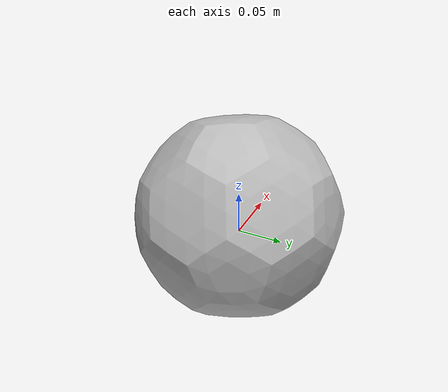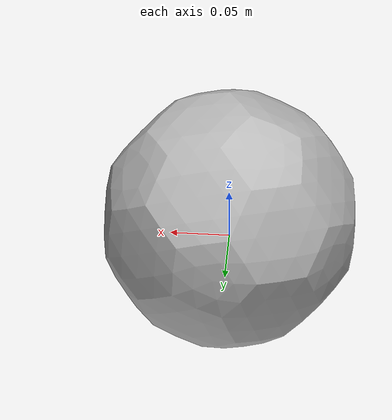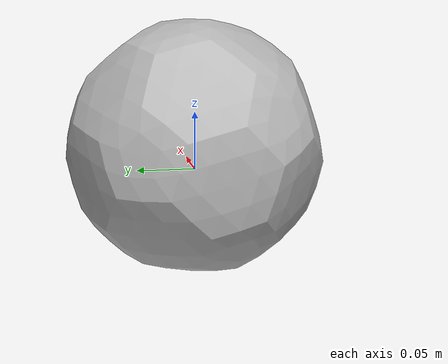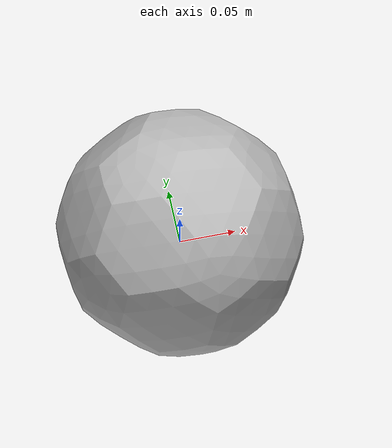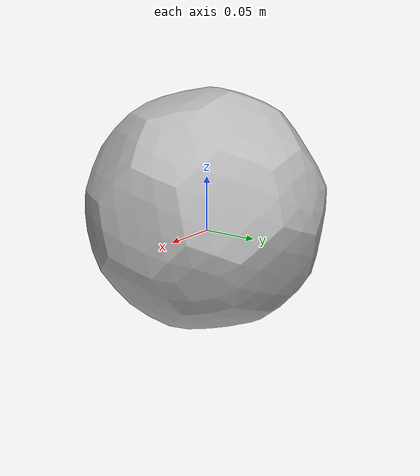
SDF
<?xml version="1.0" encoding="UTF-8"?>
<!-- SDF (Simulation Description Format)：Gazebo / Gz Sim 使用的机器人与场景描述格式 -->
<sdf version="1.11">

    <model name="football">

        <!-- static：false 表示该模型受重力与碰撞影响，可自由运动；true 则固定不动 -->
        <static>false</static>

        <pose>0 0 0.02 0 0 0</pose>

        <!--
            link：刚体连杆，是质量、碰撞、视觉、传感器的挂载单元。
            足球只有一个 link，命名为 chassis（与 bridge.yaml 中的话题路径一致）。
        -->
        <link name="chassis">

            <!-- self_collide：同一 link 内多个碰撞体是否互相碰撞；单碰撞体时无实际影响 -->
            <self_collide>false</self_collide>

            <!--
                inertial：惯性属性，物理引擎计算运动与碰撞响应所必需。
                缺少或数值不合理会导致仿真不稳定或行为异常。
            -->
            <inertial>
                <!-- mass：质量，单位 kg；MSL 比赛用球约 0.41 kg -->
                <mass>0.41</mass>

                <inertia>
                    <ixx>3.2e-03</ixx>
                    <iyy>3.2e-03</iyy>
                    <izz>3.2e-03</izz>
                    <ixy>0</ixy>
                    <ixz>0</ixz>
                    <iyz>0</iyz>
                </inertia>
            </inertial>

            <!--
                collision：物理碰撞几何，参与接触检测与力学计算（玩家不可见）。
                名称 collision 被下方 contact 传感器引用。
            -->
            <collision name="collision">

                <!-- geometry：碰撞形状定义 -->
                <geometry>
                    <!-- sphere：球体；radius 0.11 m，对应 MSL 球直径约 0.22 m -->
                    <sphere>
                        <radius>0.11</radius>
                    </sphere>
                </geometry>

                <!-- surface：接触面的物理材质属性（摩擦、弹性、接触求解参数） -->
                <surface>

                    <!-- bounce：碰撞弹性（反弹）参数 -->
                    <bounce>
                        <!-- restitution_coefficient：恢复系数，0=完全非弹性，1=完全弹性；0.05 表示几乎不反弹 -->
                        <restitution_coefficient>0.05</restitution_coefficient>
                        <threshold>10</threshold>
                    </bounce>

                    <!-- friction：摩擦参数 -->
                    <friction>
                        <!-- ode：Open Dynamics Engine 摩擦模型 -->
                        <ode>
                            <!-- mu / mu2：第一、第二摩擦方向系数；1.0 表示较高摩擦 -->
                            <mu>1</mu>
                            <mu2>1</mu2>
                        </ode>

                        <!-- torsional：扭转摩擦，影响球在接触面滚动时的旋转阻力 -->
                        <torsional>
                            <coefficient>1.0</coefficient>
                            <!-- use_patch_radius：是否使用指定接触面半径计算扭转摩擦 -->
                            <use_patch_radius>true</use_patch_radius>
                            <!-- patch_radius：接触面等效半径，单位 m -->
                            <patch_radius>0.05</patch_radius>
                        </torsional>
                    </friction>

                    <!-- contact：接触约束求解器参数 -->
                    <contact>
                        <ode>
                            <!-- max_vel：接触点最大修正速度（m/s），用于抑制穿透时的数值振荡 -->
                            <max_vel>5</max_vel>
                        </ode>
                    </contact>
                </surface>
            </collision>

            <!-- visual：仅用于渲染显示，不参与物理计算 -->
            <visual name="visual">
                <geometry>
                    <!-- mesh：外部网格模型；需保证 scale 后尺寸与 collision 球体半径一致 -->
                    <mesh>
                        <!-- scale：对 mesh 顶点坐标的缩放；若 ball.dae 为单位球则 0.11 对应半径 0.11 m -->
                        <scale>0.11 0.11 0.11</scale>
                        <!-- uri：资源路径；model:// 表示从 Gazebo 模型库中解析 football 包内文件 -->
                        <uri>model://football/meshes/ball.dae</uri>
                    </mesh>
                </geometry>
            </visual>

            <!--
                sensor：仿真传感器，可发布 Gazebo 话题供 ros_gz_bridge 桥接到 ROS 2。
                type="contact"：接触传感器，检测 collision 与其他物体的碰撞事件。
            -->
            <sensor name="contact_sensor" type="contact">
                <!-- always_on：仿真运行期间持续工作 -->
                <always_on>true</always_on>
                <!-- update_rate：发布频率，单位 Hz；50 Hz 适合一般接触检测 -->
                <update_rate>50</update_rate>
                <contact>
                    <!-- collision：指定监测哪个碰撞体（须与上方 collision name 一致） -->
                    <collision>collision</collision>
                </contact>
            </sensor>

            <velocity_decay>
                <linear>0.2</linear>
                <angular>0.5</angular>
            </velocity_decay>

        </link>

        <plugin
            filename="gz-sim-pose-publisher-system"
            name="gz::sim::systems::PosePublisher">

            <publish_model_pose>true</publish_model_pose>
            <publish_link_pose>false</publish_link_pose>
            <publish_collision_pose>false</publish_collision_pose>
            <publish_visual_pose>false</publish_visual_pose>

            <use_pose_vector_msg>true</use_pose_vector_msg>

            <update_frequency>50</update_frequency>
        </plugin>
        <plugin
            filename="gz-sim-velocity-control-system"
            name="gz::sim::systems::VelocityControl">
            <link_name>chassis</link_name>
        </plugin>

        <plugin
            filename="libball_gazebo.so"
            name="nubot_plugins::BallGazebo">
            <mu>0.5</mu>
            <gravity>9.8</gravity>
            <stop_speed>0.05</stop_speed>
            <max_speed>10.0</max_speed>
        </plugin>

    </model>
</sdf>
